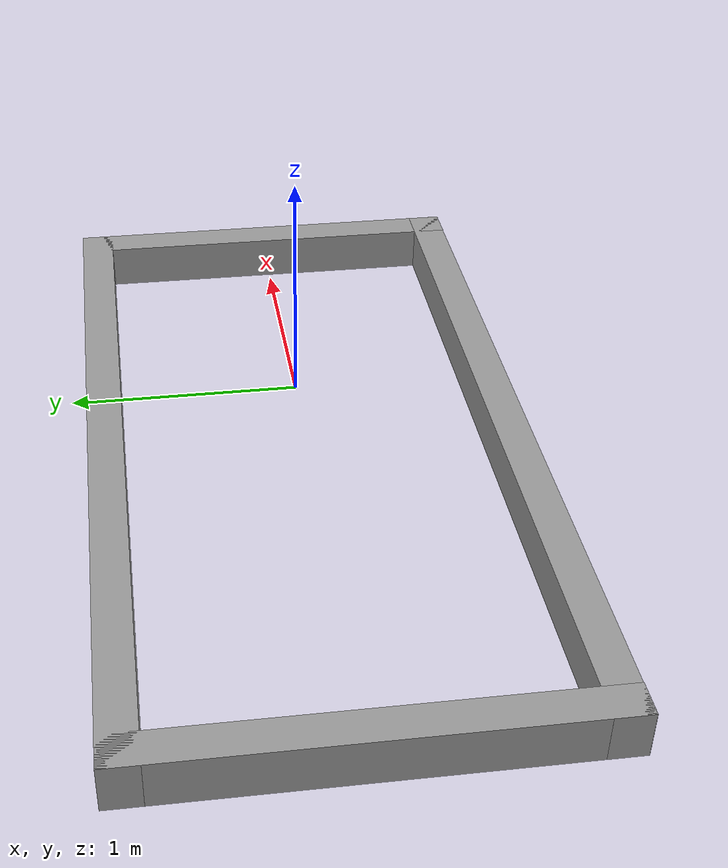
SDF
<?xml version='1.0'?>
<sdf version='1.7'>
  <model name='field'>
    <link name='Wall_0'>
      <pose>-0.431642 0.859026 0 0 -0 0</pose>
      <self_collide>0</self_collide>
      <enable_wind>0</enable_wind>
      <kinematic>0</kinematic>
      <gravity>1</gravity>
      <inertial>
        <mass>1</mass>
        <pose>0 0 0 0 -0 0</pose>
        <inertia>
          <ixx>1</ixx>
          <ixy>0</ixy>
          <ixz>0</ixz>
          <iyy>1</iyy>
          <iyz>0</iyz>
          <izz>1</izz>
        </inertia>
      </inertial>
      <visual name='Wall_0_Visual'>
        <pose>0 0 0 0 -0 0</pose>
        <geometry>
          <box>
            <size>3.6 0.15 0.2</size>
          </box>
        </geometry>
        <material>
          <script>
            <uri>file://media/materials/scripts/gazebo.material</uri>
            <name>Gazebo/Grey</name>
          </script>
          <ambient>1 1 1 1</ambient>
          <shader type='pixel'>
            <normal_map>__default__</normal_map>
          </shader>
          <diffuse>0.7 0.7 0.7 1</diffuse>
          <specular>0.01 0.01 0.01 1</specular>
          <emissive>0 0 0 1</emissive>
        </material>
        <meta>
          <layer>0</layer>
        </meta>
        <transparency>0</transparency>
        <cast_shadows>1</cast_shadows>
      </visual>
      <collision name='Wall_0_Collision'>
        <laser_retro>0</laser_retro>
        <max_contacts>10</max_contacts>
        <pose>0 0 1.25 0 -0 0</pose>
        <geometry>
          <box>
            <size>3.6 0.15 2.5</size>
          </box>
        </geometry>
        <surface>
          <friction>
            <ode>
              <mu>1</mu>
              <mu2>1</mu2>
              <fdir1>0 0 0</fdir1>
              <slip1>0</slip1>
              <slip2>0</slip2>
            </ode>
            <torsional>
              <coefficient>1</coefficient>
              <patch_radius>0</patch_radius>
              <surface_radius>0</surface_radius>
              <use_patch_radius>1</use_patch_radius>
              <ode>
                <slip>0</slip>
              </ode>
            </torsional>
          </friction>
          <bounce>
            <restitution_coefficient>0</restitution_coefficient>
            <threshold>1e+06</threshold>
          </bounce>
          <contact>
            <collide_without_contact>0</collide_without_contact>
            <collide_without_contact_bitmask>1</collide_without_contact_bitmask>
            <collide_bitmask>1</collide_bitmask>
            <ode>
              <soft_cfm>0</soft_cfm>
              <soft_erp>0.2</soft_erp>
              <kp>1e+13</kp>
              <kd>1</kd>
              <max_vel>0.01</max_vel>
              <min_depth>0</min_depth>
            </ode>
            <bullet>
              <split_impulse>1</split_impulse>
              <split_impulse_penetration_threshold>-0.01</split_impulse_penetration_threshold>
              <soft_cfm>0</soft_cfm>
              <soft_erp>0.2</soft_erp>
              <kp>1e+13</kp>
              <kd>1</kd>
            </bullet>
          </contact>
        </surface>
      </collision>
    </link>
    <link name='Wall_0_clone'>
      <pose>-0.431907 -0.857314 0 0 -0 0</pose>
      <self_collide>0</self_collide>
      <enable_wind>0</enable_wind>
      <kinematic>0</kinematic>
      <gravity>1</gravity>
      <inertial>
        <mass>1</mass>
        <pose>0 0 0 0 -0 0</pose>
        <inertia>
          <ixx>1</ixx>
          <ixy>0</ixy>
          <ixz>0</ixz>
          <iyy>1</iyy>
          <iyz>0</iyz>
          <izz>1</izz>
        </inertia>
      </inertial>
      <visual name='Wall_0_Visual'>
        <pose>0 0 0 0 -0 0</pose>
        <geometry>
          <box>
            <size>3.6 0.15 0.2</size>
          </box>
        </geometry>
        <material>
          <script>
            <uri>file://media/materials/scripts/gazebo.material</uri>
            <name>Gazebo/Grey</name>
          </script>
          <ambient>1 1 1 1</ambient>
          <shader type='pixel'>
            <normal_map>__default__</normal_map>
          </shader>
          <diffuse>0.7 0.7 0.7 1</diffuse>
          <specular>0.01 0.01 0.01 1</specular>
          <emissive>0 0 0 1</emissive>
        </material>
        <meta>
          <layer>0</layer>
        </meta>
        <transparency>0</transparency>
        <cast_shadows>1</cast_shadows>
      </visual>
      <collision name='Wall_0_Collision'>
        <laser_retro>0</laser_retro>
        <max_contacts>10</max_contacts>
        <pose>0 0 1.25 0 -0 0</pose>
        <geometry>
          <box>
            <size>3.6 0.15 2.5</size>
          </box>
        </geometry>
        <surface>
          <friction>
            <ode>
              <mu>1</mu>
              <mu2>1</mu2>
              <fdir1>0 0 0</fdir1>
              <slip1>0</slip1>
              <slip2>0</slip2>
            </ode>
            <torsional>
              <coefficient>1</coefficient>
              <patch_radius>0</patch_radius>
              <surface_radius>0</surface_radius>
              <use_patch_radius>1</use_patch_radius>
              <ode>
                <slip>0</slip>
              </ode>
            </torsional>
          </friction>
          <bounce>
            <restitution_coefficient>0</restitution_coefficient>
            <threshold>1e+06</threshold>
          </bounce>
          <contact>
            <collide_without_contact>0</collide_without_contact>
            <collide_without_contact_bitmask>1</collide_without_contact_bitmask>
            <collide_bitmask>1</collide_bitmask>
            <ode>
              <soft_cfm>0</soft_cfm>
              <soft_erp>0.2</soft_erp>
              <kp>1e+13</kp>
              <kd>1</kd>
              <max_vel>0.01</max_vel>
              <min_depth>0</min_depth>
            </ode>
            <bullet>
              <split_impulse>1</split_impulse>
              <split_impulse_penetration_threshold>-0.01</split_impulse_penetration_threshold>
              <soft_cfm>0</soft_cfm>
              <soft_erp>0.2</soft_erp>
              <kp>1e+13</kp>
              <kd>1</kd>
            </bullet>
          </contact>
        </surface>
      </collision>
    </link>
    <link name='Wall_4'>
      <pose>1.29336 0 0 0 0 -1.5708</pose>
      <self_collide>0</self_collide>
      <enable_wind>0</enable_wind>
      <kinematic>0</kinematic>
      <gravity>1</gravity>
      <inertial>
        <mass>1</mass>
        <pose>0 0 0 0 -0 0</pose>
        <inertia>
          <ixx>1</ixx>
          <ixy>0</ixy>
          <ixz>0</ixz>
          <iyy>1</iyy>
          <iyz>0</iyz>
          <izz>1</izz>
        </inertia>
      </inertial>
      <visual name='Wall_4_Visual'>
        <pose>0 0 0 0 -0 0</pose>
        <geometry>
          <box>
            <size>1.86805 0.15 0.2</size>
          </box>
        </geometry>
        <material>
          <script>
            <uri>file://media/materials/scripts/gazebo.material</uri>
            <name>Gazebo/Grey</name>
          </script>
          <ambient>1 1 1 1</ambient>
          <shader type='pixel'>
            <normal_map>__default__</normal_map>
          </shader>
          <diffuse>0.7 0.7 0.7 1</diffuse>
          <specular>0.01 0.01 0.01 1</specular>
          <emissive>0 0 0 1</emissive>
        </material>
        <meta>
          <layer>0</layer>
        </meta>
        <transparency>0</transparency>
        <cast_shadows>1</cast_shadows>
      </visual>
      <collision name='Wall_4_Collision'>
        <laser_retro>0</laser_retro>
        <max_contacts>10</max_contacts>
        <pose>0 0 1.25 0 -0 0</pose>
        <geometry>
          <box>
            <size>1.86805 0.15 2.5</size>
          </box>
        </geometry>
        <surface>
          <friction>
            <ode>
              <mu>1</mu>
              <mu2>1</mu2>
              <fdir1>0 0 0</fdir1>
              <slip1>0</slip1>
              <slip2>0</slip2>
            </ode>
            <torsional>
              <coefficient>1</coefficient>
              <patch_radius>0</patch_radius>
              <surface_radius>0</surface_radius>
              <use_patch_radius>1</use_patch_radius>
              <ode>
                <slip>0</slip>
              </ode>
            </torsional>
          </friction>
          <bounce>
            <restitution_coefficient>0</restitution_coefficient>
            <threshold>1e+06</threshold>
          </bounce>
          <contact>
            <collide_without_contact>0</collide_without_contact>
            <collide_without_contact_bitmask>1</collide_without_contact_bitmask>
            <collide_bitmask>1</collide_bitmask>
            <ode>
              <soft_cfm>0</soft_cfm>
              <soft_erp>0.2</soft_erp>
              <kp>1e+13</kp>
              <kd>1</kd>
              <max_vel>0.01</max_vel>
              <min_depth>0</min_depth>
            </ode>
            <bullet>
              <split_impulse>1</split_impulse>
              <split_impulse_penetration_threshold>-0.01</split_impulse_penetration_threshold>
              <soft_cfm>0</soft_cfm>
              <soft_erp>0.2</soft_erp>
              <kp>1e+13</kp>
              <kd>1</kd>
            </bullet>
          </contact>
        </surface>
      </collision>
    </link>
    <link name='Wall_7'>
      <pose>-2.15664 0 0 0 0 -1.5708</pose>
      <self_collide>0</self_collide>
      <enable_wind>0</enable_wind>
      <kinematic>0</kinematic>
      <gravity>1</gravity>
      <inertial>
        <mass>1</mass>
        <pose>0 0 0 0 -0 0</pose>
        <inertia>
          <ixx>1</ixx>
          <ixy>0</ixy>
          <ixz>0</ixz>
          <iyy>1</iyy>
          <iyz>0</iyz>
          <izz>1</izz>
        </inertia>
      </inertial>
      <visual name='Wall_7_Visual'>
        <pose>0 0 0 0 -0 0</pose>
        <geometry>
          <box>
            <size>1.86805 0.15 0.2</size>
          </box>
        </geometry>
        <material>
          <script>
            <uri>file://media/materials/scripts/gazebo.material</uri>
            <name>Gazebo/Grey</name>
          </script>
          <ambient>1 1 1 1</ambient>
          <shader type='pixel'>
            <normal_map>__default__</normal_map>
          </shader>
          <diffuse>0.7 0.7 0.7 1</diffuse>
          <specular>0.01 0.01 0.01 1</specular>
          <emissive>0 0 0 1</emissive>
        </material>
        <meta>
          <layer>0</layer>
        </meta>
        <transparency>0</transparency>
        <cast_shadows>1</cast_shadows>
      </visual>
      <collision name='Wall_7_Collision'>
        <laser_retro>0</laser_retro>
        <max_contacts>10</max_contacts>
        <pose>0 0 1.25 0 -0 0</pose>
        <geometry>
          <box>
            <size>1.86805 0.15 2.5</size>
          </box>
        </geometry>
        <surface>
          <friction>
            <ode>
              <mu>1</mu>
              <mu2>1</mu2>
              <fdir1>0 0 0</fdir1>
              <slip1>0</slip1>
              <slip2>0</slip2>
            </ode>
            <torsional>
              <coefficient>1</coefficient>
              <patch_radius>0</patch_radius>
              <surface_radius>0</surface_radius>
              <use_patch_radius>1</use_patch_radius>
              <ode>
                <slip>0</slip>
              </ode>
            </torsional>
          </friction>
          <bounce>
            <restitution_coefficient>0</restitution_coefficient>
            <threshold>1e+06</threshold>
          </bounce>
          <contact>
            <collide_without_contact>0</collide_without_contact>
            <collide_without_contact_bitmask>1</collide_without_contact_bitmask>
            <collide_bitmask>1</collide_bitmask>
            <ode>
              <soft_cfm>0</soft_cfm>
              <soft_erp>0.2</soft_erp>
              <kp>1e+13</kp>
              <kd>1</kd>
              <max_vel>0.01</max_vel>
              <min_depth>0</min_depth>
            </ode>
            <bullet>
              <split_impulse>1</split_impulse>
              <split_impulse_penetration_threshold>-0.01</split_impulse_penetration_threshold>
              <soft_cfm>0</soft_cfm>
              <soft_erp>0.2</soft_erp>
              <kp>1e+13</kp>
              <kd>1</kd>
            </bullet>
          </contact>
        </surface>
      </collision>
    </link>
    <static>1</static>
    <allow_auto_disable>1</allow_auto_disable>
  </model>
</sdf>
